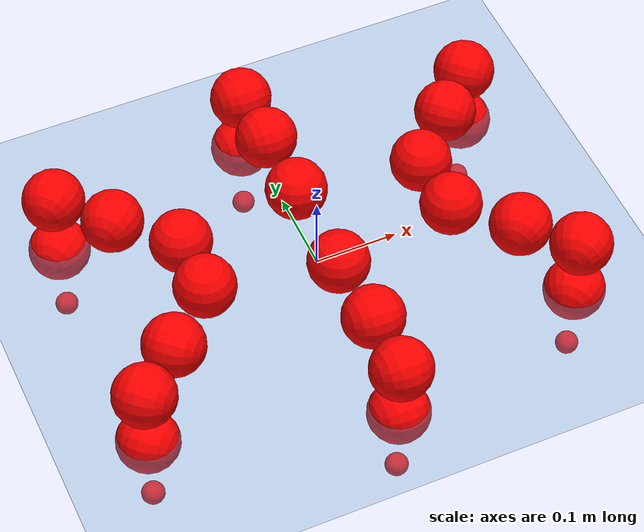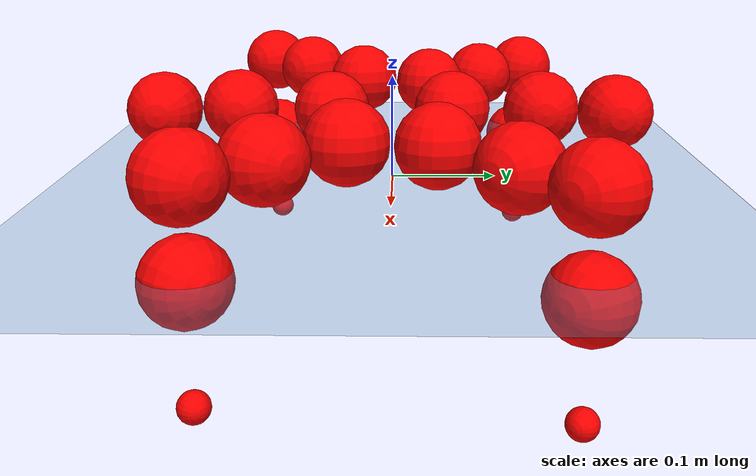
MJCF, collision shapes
<mujoco model="Golem">
  <compiler angle="radian" assetdir="assets" balanceinertia="true" inertiafromgeom="false"/>

  <option timestep="0.005" density="1.2" viscosity="2e-05"/>

  <size nkey="1"/>

  <visual>
    <quality shadowsize="8192"/>
    <map shadowclip="0.5"/>
  </visual>

  <default>
    <default class="/">
      <joint armature="0.01" damping="0.01" frictionloss="0.01"/>
      <geom contype="0" conaffinity="0" group="1" solref="-1000 -80"/>
      <site size="0.01 0.005 0.005" group="5"/>
      <general forcelimited="true" biastype="affine" gainprm="25" biasprm="0 -25 -0.5"/>
      <default class="visual">
        <geom type="mesh" group="2"/>
      </default>
      <default class="collision">
        <geom group="3"/>
      </default>
      <default class="foot">
        <geom size="0.01 0 0" condim="6" group="4" priority="1" solimp="0.015 1 0.01"/>
      </default>
      <default class="reward_collision_sphere">
        <geom group="5" rgba="1 0 0 1"/>
      </default>
    </default>
  </default>

  <asset>
    <texture type="skybox" colorspace="auto" name="//unnamed_texture_0" builtin="gradient" rgb1="0.95 0.95 0.95" rgb2="0.95 0.95 0.95" width="100" height="600"/>
    <texture type="2d" colorspace="auto" name="texplane" builtin="checker" rgb1="0.345 0.575 0.748" rgb2="0.345 0.575 0.748" markrgb="1 1 1" width="512" height="512"/>
    <material name="MatPlane" class="/" texture="texplane" texuniform="true" texrepeat="2 2" specular="0.9"/>
    <mesh name="body" class="/" file="body.stl" scale="0.001 0.001 0.001"/>
    <mesh name="coxa" class="/" file="coxa.stl" scale="0.001 0.001 0.001"/>
    <mesh name="femur" class="/" file="femur.stl" scale="0.001 0.001 0.001"/>
    <mesh name="tibia" class="/" file="tibia.stl" scale="0.001 0.001 0.001"/>
    <mesh name="tarsus" class="/" file="tarsus.stl" scale="0.001 0.001 0.001"/>
  </asset>

  <worldbody>
    <geom name="floor" class="/" size="100 100 0.125" type="plane" group="0" material="MatPlane"/>
    <light name="toplight_shadow" class="/" pos="0 0 5" dir="0.0990148 0.0990148 -0.990148" type="directional" ambient="0.04 0.04 0.04" diffuse="0.55 0.55 0.55" specular="0.12 0.12 0.12"/>
    <light name="toplight_fill" class="/" pos="0 0 5" dir="0.0990148 0.0990148 -0.990148" type="directional" castshadow="false" ambient="0.04 0.04 0.04" diffuse="0.3 0.3 0.3" specular="0.08 0.08 0.08"/>
    <body name="trunk" pos="0.000949587 0.000287601 -0.000644842" quat="0.999999 0.000246679 -0.000179173 0.00137361">
      <inertial pos="0.000719472 0.0015819 -0.00272129" quat="0.999905 0.00196736 0.00413209 0.0129861" mass="2.83129" diaginertia="0.00835317 0.0013994 0.0164063"/>
      <joint name="//unnamed_joint_0" type="free"/>
      <geom name="//unnamed_geom_1" class="/" pos="0 0 0.0701048" quat="1 0 0 0" type="mesh" rgba="0.9 0.9 0.9 1" mesh="body"/>
      <site name="imu" class="/" pos="0.110984 -0.00112424 0.116847" size="0.00911443"/>
      <camera name="track" class="/" pos="0 -1.355 0" quat="0.707107 0.707107 0 0" mode="trackcom"/>
      <camera name="ego_camera" class="/" pos="0.124987 0 0.109539" quat="-0.5 -0.5 0.5 0.5"/>
      <body name="coxa_RR" pos="-0.171665 -0.0540806 0.0723491" quat="0.382472 -0.000243071 1.72131e-05 -0.923967">
        <inertial pos="-1.69653e-06 -0.00255336 -2.71594e-05" quat="0.999977 0.00408218 0.00232658 -0.00497604" mass="0.158582" diaginertia="0.00821937 0.00144065 0.0160085"/>
        <joint name="coxa_joint_RR" class="/" pos="0 0 0" axis="0.00131308 -0.00555136 -0.999984" range="-3.19552 3.15926" armature="0.00817947" damping="0.01729" frictionloss="0.00972665"/>
        <geom name="//unnamed_geom_2" class="/" type="mesh" rgba="0.2 0.2 0.2 1" mesh="coxa"/>
        <geom name="//unnamed_geom_3" class="reward_collision_sphere" size="0.0364577" pos="-0.0288431 0 0"/>
        <body name="femur_RR" pos="0.0598059 0.000782042 0.0017133" quat="0.50008 -0.499906 0.499964 0.500049">
          <inertial pos="0.000642344 -0.00271723 0.000708261" quat="1 -0.000194785 0.00015044 -9.4055e-05" mass="0.149444" diaginertia="0.00813501 0.00141525 0.0155394"/>
          <joint name="femur_joint_RR" class="/" pos="0 0 0" axis="-0.00623628 0.00255858 -0.999977" range="-3.09605 3.14396" armature="0.00792694" damping="0.00402862" frictionloss="0.00805012"/>
          <geom name="//unnamed_geom_4" class="/" type="mesh" rgba="0.9 0.9 0.9 1" mesh="femur"/>
          <geom name="//unnamed_geom_5" class="reward_collision_sphere" size="0.0364577"/>
          <body name="tibia_RR" pos="-0.000851779 -0.0735666 -0.00253177" quat="1.3983e-05 1 -4.2096e-05 3.51494e-05">
            <inertial pos="-0.00286516 0.00119095 -0.000667816" quat="0.999981 0.0011232 -0.00414636 0.00452782" mass="0.147147" diaginertia="0.00777545 0.00136062 0.0154293"/>
            <joint name="tibia_joint_RR" class="/" pos="0 0 0" axis="-0.00302117 0.00204344 0.999993" range="-3.1396 3.09421" armature="0.00951107" damping="0.0208481" frictionloss="0.00920591"/>
            <geom name="//unnamed_geom_6" class="/" type="mesh" rgba="0.2 0.2 0.2 1" mesh="tibia"/>
            <geom name="//unnamed_geom_7" class="reward_collision_sphere" size="0.0364577"/>
            <body name="tarsus_RR" pos="0.0869007 -0.000676158 0.0011455" quat="1 0.000132785 -0.000400008 -0.000249036">
              <inertial pos="0.0606606 6.06143e-05 0.00267946" quat="0.502109 0.500992 0.502452 0.494404" mass="0.155218" diaginertia="0.00819493 0.00150778 0.0161002"/>
              <joint name="tarsus_joint_RR" class="/" pos="0 0 0" axis="0.00163915 0.00856121 0.999962" range="-3.13347 3.14659" armature="0.00906187" damping="0.00285296" frictionloss="0.00878387"/>
              <geom name="//unnamed_geom_8" class="/" type="mesh" rgba="0.9 0.9 0.9 1" mesh="tarsus"/>
              <geom name="foot_1" class="foot" size="0.00896822" pos="0.107681 0 0" quat="0 -0.707107 0 0.707107"/>
              <geom name="//unnamed_geom_10" class="reward_collision_sphere" size="0.0364577"/>
              <geom name="//unnamed_geom_11" class="reward_collision_sphere" size="0.0136716" pos="0.103355 0 0"/>
              <site name="foot_1" class="foot" pos="0.107681 0 0" quat="0 -0.707107 0 0.707107" size="0.00911443"/>
            </body>
          </body>
        </body>
      </body>
      <body name="coxa_RM" pos="-0.000181685 -0.088002 0.0681631" quat="0.706782 -0.000221685 -0.000351788 -0.707432">
        <inertial pos="0.000257346 -0.00260374 0.000699271" quat="0.999939 0.00960158 -0.0026785 0.00478039" mass="0.148014" diaginertia="0.00779178 0.00136859 0.015865"/>
        <joint name="coxa_joint_RM" class="/" pos="0 0 0" axis="-0.00445213 -0.00155863 -0.999989" stiffness="0.000663012" range="-3.13486 3.12701" armature="0.00790702" damping="0.00879837" frictionloss="0.0102972"/>
        <geom name="//unnamed_geom_12" class="/" type="mesh" rgba="0.2 0.2 0.2 1" mesh="coxa"/>
        <geom name="//unnamed_geom_13" class="reward_collision_sphere" size="0.0364577" pos="-0.0288431 0 0"/>
        <body name="femur_RM" pos="0.0592565 0.00204149 0.00231051" quat="0.500197 -0.500033 0.499722 0.500048">
          <inertial pos="-0.0014674 -0.0026025 -0.0010933" quat="0.999998 0.000142809 0.000368269 0.00180696" mass="0.155201" diaginertia="0.00831113 0.00137436 0.0159242"/>
          <joint name="femur_joint_RM" class="/" pos="0 0 0" axis="0.00719606 -0.0106038 -0.999918" range="-3.17152 3.17014" armature="0.00915864" damping="0.0176041" frictionloss="0.00956078"/>
          <geom name="//unnamed_geom_14" class="/" type="mesh" rgba="0.9 0.9 0.9 1" mesh="femur"/>
          <geom name="//unnamed_geom_15" class="reward_collision_sphere" size="0.0364577"/>
          <body name="tibia_RM" pos="0.00282328 -0.0747406 -0.00117224" quat="1.31897e-05 1 -3.28622e-06 -1.2587e-05">
            <inertial pos="-0.00240102 -0.00102245 -0.00090589" quat="0.999963 0.00276065 -0.00324201 -0.00741105" mass="0.14682" diaginertia="0.00832256 0.00140145 0.015648"/>
            <joint name="tibia_joint_RM" class="/" pos="0 0 0" axis="-0.00533719 -0.0020574 0.999984" stiffness="0.00280124" range="-3.17435 3.10912" armature="0.00827048" damping="0" frictionloss="0.00797637"/>
            <geom name="//unnamed_geom_16" class="/" type="mesh" rgba="0.2 0.2 0.2 1" mesh="tibia"/>
            <geom name="//unnamed_geom_17" class="reward_collision_sphere" size="0.0364577"/>
            <body name="tarsus_RM" pos="0.0819378 -0.00102741 0.000247953" quat="0.999999 0.00101804 0.000522074 0.000842967">
              <inertial pos="0.0547327 -0.000305993 -0.00252868" quat="0.494428 0.507495 0.502591 0.495371" mass="0.15133" diaginertia="0.00808514 0.00143208 0.0154951"/>
              <joint name="tarsus_joint_RM" class="/" pos="0 0 0" axis="0.00268722 -0.00184682 0.999995" stiffness="0.00301801" range="-3.15182 3.12139" armature="0.00930543" damping="0.00945869" frictionloss="0.00861209"/>
              <geom name="//unnamed_geom_18" class="/" type="mesh" rgba="0.9 0.9 0.9 1" mesh="tarsus"/>
              <geom name="foot_2" class="foot" size="0.00873421" pos="0.107681 0 0" quat="0 -0.707107 0 0.707107"/>
              <geom name="//unnamed_geom_20" class="reward_collision_sphere" size="0.0364577"/>
              <geom name="//unnamed_geom_21" class="reward_collision_sphere" size="0.0136716" pos="0.103355 0 0"/>
              <site name="foot_2" class="foot" pos="0.107681 0 0" quat="0 -0.707107 0 0.707107" size="0.00911443"/>
            </body>
          </body>
        </body>
      </body>
      <body name="coxa_RF" pos="0.171088 -0.0566946 0.0712849" quat="0.923991 0.000220285 -0.000229013 -0.382414">
        <inertial pos="0.000801798 -0.00108019 -0.00104922" quat="0.999969 0.00630549 0.000924195 0.00463718" mass="0.150739" diaginertia="0.00837271 0.00143929 0.0156438"/>
        <joint name="coxa_joint_RF" class="/" pos="0 0 0" axis="-0.00113062 -0.00416598 -0.999991" range="-3.14077 3.12357" armature="0.00931093" damping="0" frictionloss="0.00788651"/>
        <geom name="//unnamed_geom_22" class="/" type="mesh" rgba="0.2 0.2 0.2 1" mesh="coxa"/>
        <geom name="//unnamed_geom_23" class="reward_collision_sphere" size="0.0364577" pos="-0.0288431 0 0"/>
        <body name="femur_RF" pos="0.0548089 -0.001248 0.000429114" quat="0.500166 -0.49988 0.500258 0.499696">
          <inertial pos="0.000641704 0.000234251 -0.00273139" quat="0.999907 -0.00244063 0.0132801 -0.00206848" mass="0.146124" diaginertia="0.00795095 0.00138035 0.0153589"/>
          <joint name="femur_joint_RF" class="/" pos="0 0 0" axis="-0.00853595 0.00727301 -0.999937" range="-3.08362 3.19334" armature="0.00913659" damping="0.00889577" frictionloss="0.00957454"/>
          <geom name="//unnamed_geom_24" class="/" type="mesh" rgba="0.9 0.9 0.9 1" mesh="femur"/>
          <geom name="//unnamed_geom_25" class="reward_collision_sphere" size="0.0364577"/>
          <body name="tibia_RF" pos="-0.000451151 -0.0726713 -0.00292462" quat="-0.000348781 1 -0.000226273 0.000347835">
            <inertial pos="0.00105404 -0.00175482 -0.000202783" quat="0.999905 0.0032453 0.0104899 -0.00830282" mass="0.157791" diaginertia="0.00824632 0.00145521 0.0160261"/>
            <joint name="tibia_joint_RF" class="/" pos="0 0 0" axis="-0.00445291 -0.00130392 0.999989" stiffness="0.0158741" range="-3.1537 3.10675" armature="0.00913143" damping="0.0207304" frictionloss="0.00905383"/>
            <geom name="//unnamed_geom_26" class="/" type="mesh" rgba="0.2 0.2 0.2 1" mesh="tibia"/>
            <geom name="//unnamed_geom_27" class="reward_collision_sphere" size="0.0364577"/>
            <body name="tarsus_RF" pos="0.0808003 -0.00114357 0.00133052" quat="0.999999 -0.00112705 -0.000203706 -0.000230428">
              <inertial pos="0.059145 -0.000889285 0.00164581" quat="0.501064 0.499551 0.4991 0.500283" mass="0.147765" diaginertia="0.00840885 0.00142945 0.0154118"/>
              <joint name="tarsus_joint_RF" class="/" pos="0 0 0" axis="0.00143518 -0.00825723 0.999965" range="-3.11943 3.11046" armature="0.00964328" damping="0" frictionloss="0.00894197"/>
              <geom name="//unnamed_geom_28" class="/" type="mesh" rgba="0.9 0.9 0.9 1" mesh="tarsus"/>
              <geom name="foot_3" class="foot" size="0.00929108" pos="0.107681 0 0" quat="0 -0.707107 0 0.707107"/>
              <geom name="//unnamed_geom_30" class="reward_collision_sphere" size="0.0364577"/>
              <geom name="//unnamed_geom_31" class="reward_collision_sphere" size="0.0136716" pos="0.103355 0 0"/>
              <site name="foot_3" class="foot" pos="0.107681 0 0" quat="0 -0.707107 0 0.707107" size="0.00911443"/>
            </body>
          </body>
        </body>
      </body>
      <body name="coxa_LR" pos="-0.170933 0.0597135 0.0688647" quat="0.382636 0.000133991 -3.11756e-05 0.923899">
        <inertial pos="-0.000132855 -0.00293538 -0.0017911" quat="0.999934 0.00954435 0.000788129 0.00637204" mass="0.146507" diaginertia="0.00824782 0.00146241 0.0157388"/>
        <joint name="coxa_joint_LR" class="/" pos="0 0 0" axis="-0.000864964 0.00724978 -0.999973" stiffness="0.0132571" range="-3.1328 3.12776" armature="0.0103512" damping="0.0129747" frictionloss="0.0100216"/>
        <geom name="//unnamed_geom_32" class="/" type="mesh" rgba="0.2 0.2 0.2 1" mesh="coxa"/>
        <geom name="//unnamed_geom_33" class="reward_collision_sphere" size="0.0364577" pos="-0.0288431 0 0"/>
        <body name="femur_LR" pos="0.0562645 -0.000444098 -0.00213999" quat="0.500414 -0.499178 0.500574 0.499833">
          <inertial pos="0.000707557 -0.0028133 5.04754e-06" quat="0.999902 -0.00574522 0.00661434 0.0109461" mass="0.154896" diaginertia="0.0081077 0.0014063 0.0157498"/>
          <joint name="femur_joint_LR" class="/" pos="0 0 0" axis="-0.00081448 -0.0013076 0.999999" range="-3.1351 3.14051" armature="0.010305" damping="0.0141998" frictionloss="0.0089916"/>
          <geom name="//unnamed_geom_34" class="/" type="mesh" rgba="0.9 0.9 0.9 1" mesh="femur"/>
          <geom name="//unnamed_geom_35" class="reward_collision_sphere" size="0.0364577"/>
          <body name="tibia_LR" pos="-0.00162989 -0.0747565 -0.00271624" quat="-0.000106199 1 5.03651e-05 -0.000150171">
            <inertial pos="1.17796e-05 0.00127688 0.00131621" quat="0.999969 -0.00444499 0.00617176 0.00187325" mass="0.156538" diaginertia="0.00841144 0.00148697 0.0166034"/>
            <joint name="tibia_joint_LR" class="/" pos="0 0 0" axis="-0.00237751 -0.00360714 -0.999991" range="-3.10628 3.15723" armature="0.00884587" damping="0.0180748" frictionloss="0.0102209"/>
            <geom name="//unnamed_geom_36" class="/" type="mesh" rgba="0.2 0.2 0.2 1" mesh="tibia"/>
            <geom name="//unnamed_geom_37" class="reward_collision_sphere" size="0.0364577"/>
            <body name="tarsus_LR" pos="0.0851934 -0.000975078 -0.00245908" quat="1 0.000381849 0.000825073 -7.74875e-05">
              <inertial pos="0.0576723 -0.000193731 0.00110105" quat="0.499912 0.500578 0.499427 0.500082" mass="0.15208" diaginertia="0.00856728 0.00142423 0.0160903"/>
              <joint name="tarsus_joint_LR" class="/" pos="0 0 0" axis="-0.00261434 0.00153661 -0.999995" range="-3.08735 3.08395" armature="0.00806902" damping="0.0139241" frictionloss="0.00897885"/>
              <geom name="//unnamed_geom_38" class="/" type="mesh" rgba="0.9 0.9 0.9 1" mesh="tarsus"/>
              <geom name="foot_4" class="foot" size="0.00899436" pos="0.107681 0 0" quat="0.707107 0 -0.707107 0"/>
              <geom name="//unnamed_geom_40" class="reward_collision_sphere" size="0.0364577"/>
              <geom name="//unnamed_geom_41" class="reward_collision_sphere" size="0.0136716" pos="0.103355 0 0"/>
              <site name="foot_4" class="foot" pos="0.107681 0 0" quat="0.707107 0 -0.707107 0" size="0.00911443"/>
            </body>
          </body>
        </body>
      </body>
      <body name="coxa_LM" pos="-0.000765901 0.0864726 0.0684631" quat="0.706951 -0.000979939 -9.2253e-05 0.707262">
        <inertial pos="0.000311172 -0.000845123 -0.000530256" quat="0.999901 0.00953654 0.00929136 0.00456955" mass="0.153569" diaginertia="0.00780386 0.00140335 0.0152875"/>
        <joint name="coxa_joint_LM" class="/" pos="0 0 0" axis="-0.00202252 0.00725631 -0.999972" range="-3.12429 3.08916" armature="0.00908298" damping="0.0215741" frictionloss="0.00901943"/>
        <geom name="//unnamed_geom_42" class="/" type="mesh" rgba="0.2 0.2 0.2 1" mesh="coxa"/>
        <geom name="//unnamed_geom_43" class="reward_collision_sphere" size="0.0364577" pos="-0.0288431 0 0"/>
        <body name="femur_LM" pos="0.0573059 0.000563706 0.000456341" quat="0.499975 -0.500084 0.500028 0.499913">
          <inertial pos="8.42062e-05 0.00255025 -0.00260699" quat="0.999991 -0.000613054 -0.00189669 -0.00379736" mass="0.155528" diaginertia="0.00791908 0.00146585 0.0160028"/>
          <joint name="femur_joint_LM" class="/" pos="0 0 0" axis="-0.00283284 -0.00399203 0.999988" stiffness="0.00750302" range="-3.13277 3.13089" armature="0.00874992" damping="0" frictionloss="0.00997625"/>
          <geom name="//unnamed_geom_44" class="/" type="mesh" rgba="0.9 0.9 0.9 1" mesh="femur"/>
          <geom name="//unnamed_geom_45" class="reward_collision_sphere" size="0.0364577"/>
          <body name="tibia_LM" pos="0.00351929 -0.0727221 0.00153378" quat="-2.93742e-05 0.999999 0.000946316 -0.000549094">
            <inertial pos="0.00156597 -0.000487225 0.00221511" quat="0.999956 0.00263798 3.51758e-05 -0.00903713" mass="0.150915" diaginertia="0.00835519 0.00141581 0.0154455"/>
            <joint name="tibia_joint_LM" class="/" pos="0 0 0" axis="0.008681 0.00595411 -0.999945" stiffness="0.00969147" range="-3.14062 3.16139" armature="0.0096873" damping="0" frictionloss="0.0103849"/>
            <geom name="//unnamed_geom_46" class="/" type="mesh" rgba="0.2 0.2 0.2 1" mesh="tibia"/>
            <geom name="//unnamed_geom_47" class="reward_collision_sphere" size="0.0364577"/>
            <body name="tarsus_LM" pos="0.0830412 -0.00228353 -0.00311273" quat="1 -4.15174e-05 -6.61141e-06 -2.72259e-05">
              <inertial pos="0.058159 -0.00199797 -0.002337" quat="0.500318 0.499615 0.499665 0.500402" mass="0.151912" diaginertia="0.00814861 0.00141682 0.01637"/>
              <joint name="tarsus_joint_LM" class="/" pos="0 0 0" axis="-0.000893087 0.00842287 -0.999964" range="-3.12317 3.15918" armature="0.00877121" damping="0.0107562" frictionloss="0.00820425"/>
              <geom name="//unnamed_geom_48" class="/" type="mesh" rgba="0.9 0.9 0.9 1" mesh="tarsus"/>
              <geom name="foot_5" class="foot" size="0.00932268" pos="0.107681 0 0" quat="0.707107 0 -0.707107 0"/>
              <geom name="//unnamed_geom_50" class="reward_collision_sphere" size="0.0364577"/>
              <geom name="//unnamed_geom_51" class="reward_collision_sphere" size="0.0136716" pos="0.103355 0 0"/>
              <site name="foot_5" class="foot" pos="0.107681 0 0" quat="0.707107 0 -0.707107 0" size="0.00911443"/>
            </body>
          </body>
        </body>
      </body>
      <body name="coxa_LF" pos="0.169015 0.0589869 0.0681864" quat="0.923973 -0.00062781 -1.0869e-05 0.382458">
        <inertial pos="0.00207709 0.00126975 0.00255255" quat="0.999996 -0.00013524 -0.0024555 -0.00144861" mass="0.149874" diaginertia="0.00815307 0.00146171 0.0157702"/>
        <joint name="coxa_joint_LF" class="/" pos="0 0 0" axis="-0.00246025 4.06961e-05 -0.999997" stiffness="0.00437376" range="-3.13205 3.11602" armature="0.00797503" damping="0.00180101" frictionloss="0.00940547"/>
        <geom name="//unnamed_geom_52" class="/" type="mesh" rgba="0.2 0.2 0.2 1" mesh="coxa"/>
        <geom name="//unnamed_geom_53" class="reward_collision_sphere" size="0.0364577" pos="-0.0288431 0 0"/>
        <body name="femur_LF" pos="0.0569402 -0.000211311 -0.00193807" quat="0.500579 -0.499204 0.499988 0.500229">
          <inertial pos="-0.00159968 0.00221997 0.00106508" quat="0.999907 0.00456246 -0.0121557 0.00409295" mass="0.146864" diaginertia="0.0080381 0.00141321 0.0156649"/>
          <joint name="femur_joint_LF" class="/" pos="0 0 0" axis="-0.0032366 0.00267611 0.999991" range="-3.15942 3.12369" armature="0.0092433" damping="5.00493e-05" frictionloss="0.00916204"/>
          <geom name="//unnamed_geom_54" class="/" type="mesh" rgba="0.9 0.9 0.9 1" mesh="femur"/>
          <geom name="//unnamed_geom_55" class="reward_collision_sphere" size="0.0364577"/>
          <body name="tibia_LF" pos="0.000458514 -0.0704899 0.000672311" quat="-0.000659888 0.999999 0.000378709 -0.000763547">
            <inertial pos="-0.00166227 0.000646556 -0.000314833" quat="0.999991 -0.0029369 0.00266266 -0.00122362" mass="0.151297" diaginertia="0.00793635 0.00142246 0.0152378"/>
            <joint name="tibia_joint_LF" class="/" pos="0 0 0" axis="0.00397229 -0.00267734 -0.999989" stiffness="0.0147862" range="-3.14378 3.19435" armature="0.00851206" damping="0.0135826" frictionloss="0.00874642"/>
            <geom name="//unnamed_geom_56" class="/" type="mesh" rgba="0.2 0.2 0.2 1" mesh="tibia"/>
            <geom name="//unnamed_geom_57" class="reward_collision_sphere" size="0.0364577"/>
            <body name="tarsus_LF" pos="0.0860017 -0.00114385 0.000185883" quat="1 2.49445e-06 -4.29202e-05 -7.75932e-05">
              <inertial pos="0.055284 -0.00266104 -0.00247075" quat="0.502549 0.494046 0.49806 0.505271" mass="0.148741" diaginertia="0.00827951 0.00142598 0.0159024"/>
              <joint name="tarsus_joint_LF" class="/" pos="0 0 0" axis="-0.0114148 -0.00971331 -0.999888" range="-3.17809 3.19509" armature="0.00784143" damping="0.00996618" frictionloss="0.00865603"/>
              <geom name="//unnamed_geom_58" class="/" type="mesh" rgba="0.9 0.9 0.9 1" mesh="tarsus"/>
              <geom name="foot_6" class="foot" size="0.00993386" pos="0.107681 0 0" quat="0.707107 0 -0.707107 0"/>
              <geom name="//unnamed_geom_60" class="reward_collision_sphere" size="0.0364577"/>
              <geom name="//unnamed_geom_61" class="reward_collision_sphere" size="0.0136716" pos="0.103355 0 0"/>
              <site name="foot_6" class="foot" pos="0.107681 0 0" quat="0.707107 0 -0.707107 0" size="0.00911443"/>
            </body>
          </body>
        </body>
      </body>
    </body>
  </worldbody>

  <contact>
    <pair class="/" geom1="floor" geom2="foot_1" name="//unnamed_contact_0"/>
    <pair class="/" geom1="floor" geom2="foot_2" name="//unnamed_contact_1"/>
    <pair class="/" geom1="floor" geom2="foot_3" name="//unnamed_contact_2"/>
    <pair class="/" geom1="floor" geom2="foot_4" name="//unnamed_contact_3"/>
    <pair class="/" geom1="floor" geom2="foot_5" name="//unnamed_contact_4"/>
    <pair class="/" geom1="floor" geom2="foot_6" name="//unnamed_contact_5"/>
  </contact>

  <actuator>
    <general name="coxa_joint_RR" class="/" joint="coxa_joint_RR" forcerange="-6.83892 6.83892" gainprm="21.7758" biasprm="0 -21.7758 -0.468422"/>
    <general name="femur_joint_RR" class="/" joint="femur_joint_RR" forcerange="-7.30235 7.30235" gainprm="21.7758" biasprm="0 -21.7758 -0.468422"/>
    <general name="tibia_joint_RR" class="/" joint="tibia_joint_RR" forcerange="-6.32682 6.32682" gainprm="21.7758" biasprm="0 -21.7758 -0.468422"/>
    <general name="tarsus_joint_RR" class="/" joint="tarsus_joint_RR" forcerange="-7.32717 7.32717" gainprm="21.7758" biasprm="0 -21.7758 -0.468422"/>
    <general name="coxa_joint_RM" class="/" joint="coxa_joint_RM" forcerange="-6.42487 6.42487" gainprm="21.7758" biasprm="0 -21.7758 -0.468422"/>
    <general name="femur_joint_RM" class="/" joint="femur_joint_RM" forcerange="-6.87681 6.87681" gainprm="21.7758" biasprm="0 -21.7758 -0.468422"/>
    <general name="tibia_joint_RM" class="/" joint="tibia_joint_RM" forcerange="-7.33645 7.33645" gainprm="21.7758" biasprm="0 -21.7758 -0.468422"/>
    <general name="tarsus_joint_RM" class="/" joint="tarsus_joint_RM" forcerange="-6.3355 6.3355" gainprm="21.7758" biasprm="0 -21.7758 -0.468422"/>
    <general name="coxa_joint_RF" class="/" joint="coxa_joint_RF" forcerange="-7.07438 7.07438" gainprm="21.7758" biasprm="0 -21.7758 -0.468422"/>
    <general name="femur_joint_RF" class="/" joint="femur_joint_RF" forcerange="-6.5926 6.5926" gainprm="21.7758" biasprm="0 -21.7758 -0.468422"/>
    <general name="tibia_joint_RF" class="/" joint="tibia_joint_RF" forcerange="-6.87027 6.87027" gainprm="21.7758" biasprm="0 -21.7758 -0.468422"/>
    <general name="tarsus_joint_RF" class="/" joint="tarsus_joint_RF" forcerange="-6.64777 6.64777" gainprm="21.7758" biasprm="0 -21.7758 -0.468422"/>
    <general name="coxa_joint_LR" class="/" joint="coxa_joint_LR" forcerange="-6.82028 6.82028" gainprm="21.7758" biasprm="0 -21.7758 -0.468422"/>
    <general name="femur_joint_LR" class="/" joint="femur_joint_LR" forcerange="-6.60622 6.60622" gainprm="21.7758" biasprm="0 -21.7758 -0.468422"/>
    <general name="tibia_joint_LR" class="/" joint="tibia_joint_LR" forcerange="-7.19277 7.19277" gainprm="21.7758" biasprm="0 -21.7758 -0.468422"/>
    <general name="tarsus_joint_LR" class="/" joint="tarsus_joint_LR" forcerange="-6.71298 6.71298" gainprm="21.7758" biasprm="0 -21.7758 -0.468422"/>
    <general name="coxa_joint_LM" class="/" joint="coxa_joint_LM" forcerange="-6.29136 6.29136" gainprm="21.7758" biasprm="0 -21.7758 -0.468422"/>
    <general name="femur_joint_LM" class="/" joint="femur_joint_LM" forcerange="-7.23135 7.23135" gainprm="21.7758" biasprm="0 -21.7758 -0.468422"/>
    <general name="tibia_joint_LM" class="/" joint="tibia_joint_LM" forcerange="-6.88349 6.88349" gainprm="21.7758" biasprm="0 -21.7758 -0.468422"/>
    <general name="tarsus_joint_LM" class="/" joint="tarsus_joint_LM" forcerange="-6.49147 6.49147" gainprm="21.7758" biasprm="0 -21.7758 -0.468422"/>
    <general name="coxa_joint_LF" class="/" joint="coxa_joint_LF" forcerange="-6.09213 6.09213" gainprm="21.7758" biasprm="0 -21.7758 -0.468422"/>
    <general name="femur_joint_LF" class="/" joint="femur_joint_LF" forcerange="-6.06559 6.06559" gainprm="21.7758" biasprm="0 -21.7758 -0.468422"/>
    <general name="tibia_joint_LF" class="/" joint="tibia_joint_LF" forcerange="-6.0552 6.0552" gainprm="21.7758" biasprm="0 -21.7758 -0.468422"/>
    <general name="tarsus_joint_LF" class="/" joint="tarsus_joint_LF" forcerange="-5.94964 5.94964" gainprm="21.7758" biasprm="0 -21.7758 -0.468422"/>
  </actuator>

  <sensor>
    <gyro site="imu" name="imu_angular_velocity"/>
    <velocimeter site="imu" name="imu_linear_velocity"/>
    <framelinvel objtype="site" objname="foot_1" name="foot_1_global_linear_velocity"/>
    <framelinvel objtype="site" objname="foot_2" name="foot_2_global_linear_velocity"/>
    <framelinvel objtype="site" objname="foot_3" name="foot_3_global_linear_velocity"/>
    <framelinvel objtype="site" objname="foot_4" name="foot_4_global_linear_velocity"/>
    <framelinvel objtype="site" objname="foot_5" name="foot_5_global_linear_velocity"/>
    <framelinvel objtype="site" objname="foot_6" name="foot_6_global_linear_velocity"/>
  </sensor>

  <keyframe>
    <key name="home" qpos="0 0 0.1457 1 0 0 0 0 0 0 0 0 0 0 0 0 0 0 0 0 0 0 0 0 0 0 0 0 0 0 0"/>
  </keyframe>
</mujoco>
